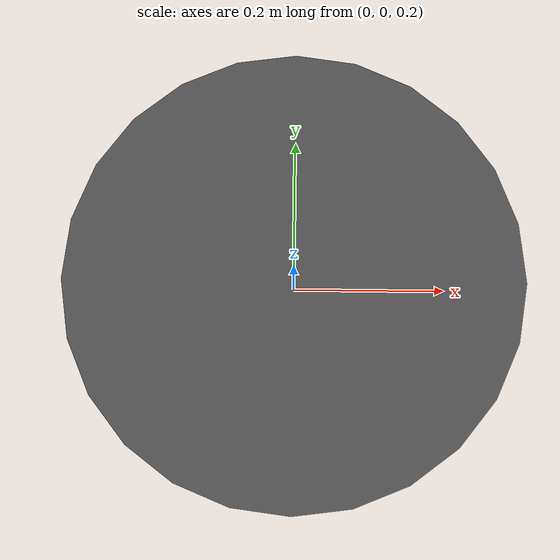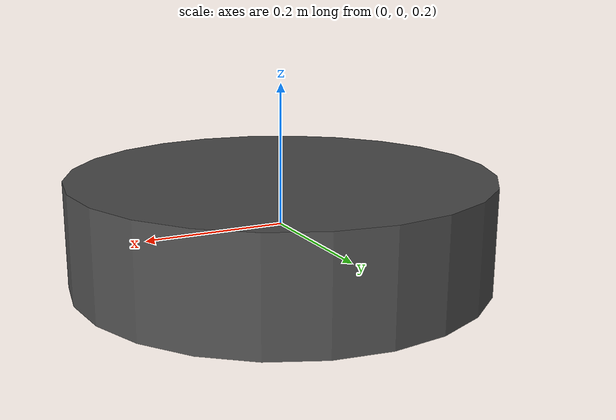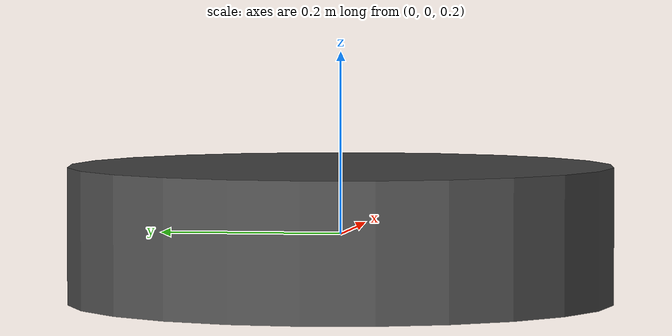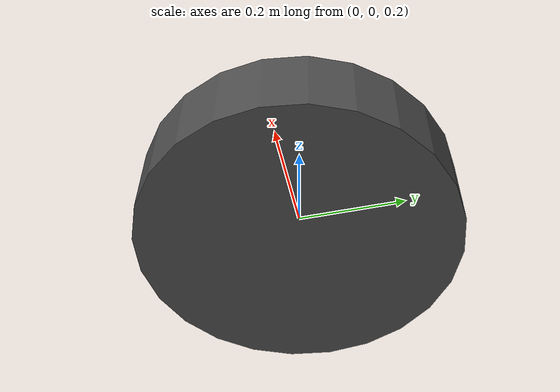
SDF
<?xml version="1.0" ?>
<sdf version="1.6">
  <model name="x500_sensors">
    <pose>0 0 0.2 0 0 0</pose>
    <link name="base_link">
      <inertial>
        <pose>0 0 0 0 0 0</pose>
        <mass>2.0</mass>
        <inertia>
          <ixx>0.03</ixx>
          <ixy>0</ixy>
          <ixz>0</ixz>
          <iyy>0.03</iyy>
          <iyz>0</iyz>
          <izz>0.06</izz>
        </inertia>
      </inertial>

      <collision name="base_collision">
        <geometry>
          <cylinder>
            <radius>0.3</radius>
            <length>0.15</length>
          </cylinder>
        </geometry>
      </collision>

      <visual name="base_visual">
        <geometry>
          <cylinder>
            <radius>0.3</radius>
            <length>0.15</length>
          </cylinder>
        </geometry>
        <material>
          <ambient>0.2 0.2 0.2 1.0</ambient>
          <diffuse>0.3 0.3 0.3 1.0</diffuse>
        </material>
      </visual>

      <!-- 2D 360 LiDAR Sensor -->
      <sensor name="lidar_2d" type="gpu_lidar">
        <pose>0 0 0.1 0 0 0</pose>
        <always_on>true</always_on>
        <update_rate>10.0</update_rate>
        <topic>/scan</topic>
        <lidar>
          <scan>
            <horizontal>
              <samples>360</samples>
              <resolution>1</resolution>
              <min_angle>-3.1415926</min_angle>
              <max_angle>3.1415926</max_angle>
            </horizontal>
          </scan>
          <range>
            <min>0.15</min>
            <max>12.0</max>
            <resolution>0.01</resolution>
          </range>
        </lidar>
      </sensor>

      <!-- RealSense D435i Depth & RGB Camera Sensor -->
      <sensor name="d435i_depth" type="rgbd_camera">
        <pose>0.15 0 0 0 0 0</pose>
        <always_on>true</always_on>
        <update_rate>15.0</update_rate>
        <topic>/camera</topic>
        <camera>
          <horizontal_fov>1.500983</horizontal_fov> <!-- 86 deg -->
          <image>
            <width>640</width>
            <height>480</height>
            <format>R8G8B8</format>
          </image>
          <clip>
            <near>0.2</near>
            <far>10.0</far>
          </clip>
        </camera>
      </sensor>

      <!-- PMW3901 Optical Flow Sensor -->
      <sensor name="optical_flow" type="camera">
        <pose>0 0 -0.05 0 1.5707963 0</pose>
        <always_on>true</always_on>
        <update_rate>20.0</update_rate>
        <topic>/optical_flow</topic>
        <camera>
          <horizontal_fov>0.7</horizontal_fov>
          <image>
            <width>64</width>
            <height>64</height>
            <format>L8</format>
          </image>
          <clip>
            <near>0.05</near>
            <far>10.0</far>
          </clip>
        </camera>
      </sensor>

      <!-- Downward Rangefinder Sensor -->
      <sensor name="downward_rangefinder" type="gpu_lidar">
        <pose>0 0 -0.05 0 1.5707963 0</pose>
        <always_on>true</always_on>
        <update_rate>20.0</update_rate>
        <topic>/rangefinder</topic>
        <lidar>
          <scan>
            <horizontal>
              <samples>1</samples>
              <resolution>1</resolution>
              <min_angle>0</min_angle>
              <max_angle>0</max_angle>
            </horizontal>
          </scan>
          <range>
            <min>0.05</min>
            <max>10.0</max>
            <resolution>0.005</resolution>
          </range>
        </lidar>
      </sensor>
    </link>
  </model>
</sdf>
